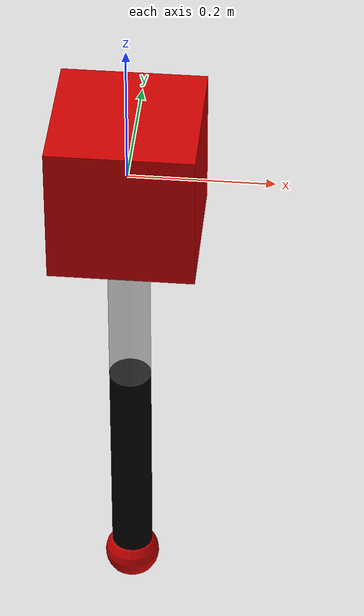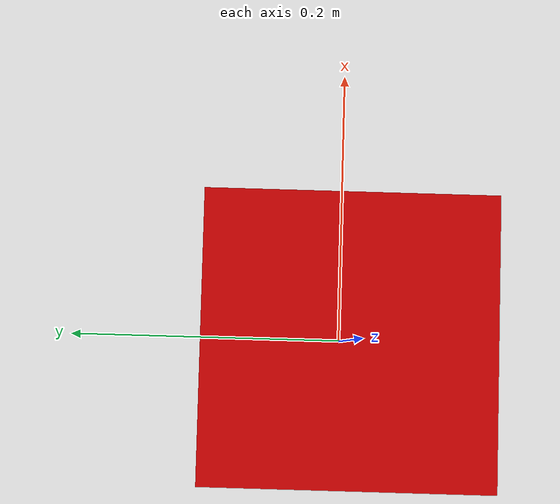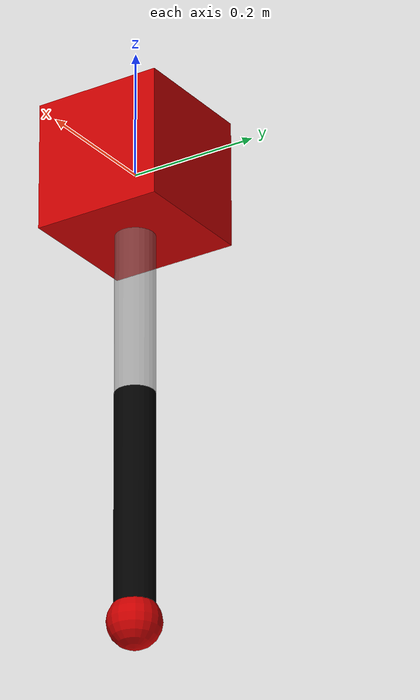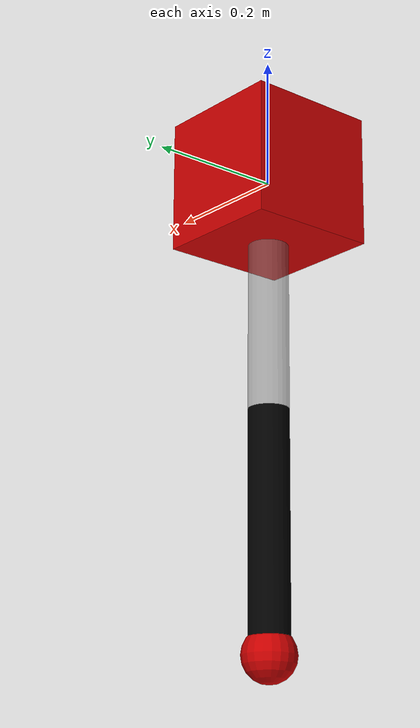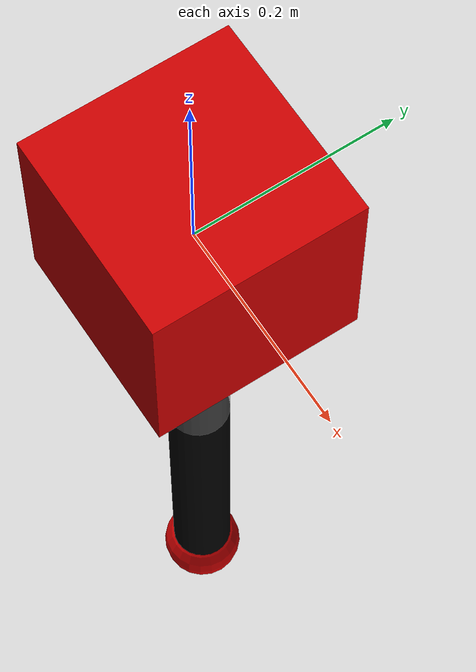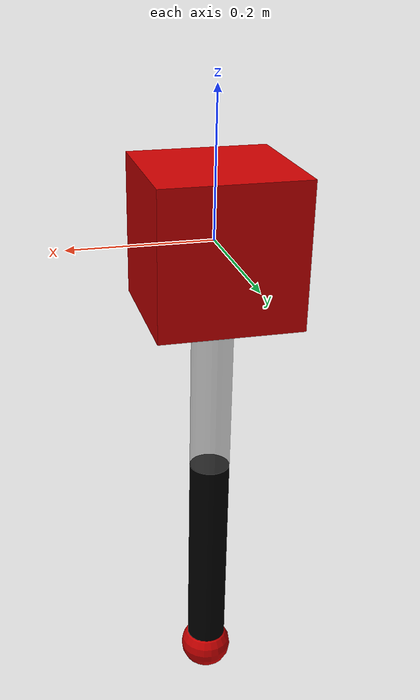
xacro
<?xml version="1.0"?>
<robot name="slatol" xmlns:xacro="http://www.ros.org/wiki/xacro">

  <xacro:property name="base_size" value="0.2" />
  <xacro:property name="L1" value="0.35" />
  <xacro:property name="L2" value="0.35" />
  <xacro:property name="link_radius" value="0.03" />

  <material name="Red"><color rgba="0.8 0 0 1"/></material>
  <material name="Blue"><color rgba="0 0 0.8 1"/></material>
  <material name="Black"><color rgba="0 0 0 1"/></material>
  <material name="Grey"><color rgba="0.5 0.5 0.5 0.5"/></material>

  <link name="world"/>

  <joint name="world_slide_x" type="prismatic">
    <parent link="world"/>
    <child link="virtual_rail_x"/>
    <origin xyz="0 0 0" rpy="0 0 0"/>
    <axis xyz="1 0 0"/>
    <limit lower="-100" upper="100" effort="20000" velocity="100"/>
    <dynamics damping="0.0" friction="0.0"/>
  </joint>

  <link name="virtual_rail_x">
    <inertial>
        <mass value="0.01"/>
        <inertia ixx="0.0001" iyy="0.0001" izz="0.0001" ixy="0" ixz="0" iyz="0"/>
    </inertial>
  </link>

  <joint name="world_slide_z" type="prismatic">
    <parent link="virtual_rail_x"/>
    <child link="virtual_rail_z"/>
    <origin xyz="0 0 0" rpy="0 0 0"/>
    <axis xyz="0 0 1"/>
    <limit lower="-10" upper="50" effort="20000" velocity="100"/>
    <dynamics damping="0.0" friction="0.0"/>
  </joint>

  <link name="virtual_rail_z">
    <inertial>
        <mass value="0.01"/>
        <inertia ixx="0.0001" iyy="0.0001" izz="0.0001" ixy="0" ixz="0" iyz="0"/>
    </inertial>
  </link>

  <joint name="boom_pitch" type="revolute">
    <parent link="virtual_rail_z"/>
    <child link="base_link"/>
    <origin xyz="0 0 0" rpy="0 0 0"/>
    <axis xyz="0 1 0"/>
    <limit lower="-6.28" upper="6.28" effort="1000" velocity="50"/>
    <dynamics damping="0.0" friction="0.0"/>
  </joint>

  <link name="base_link">
    <visual><geometry><box size="${base_size} ${base_size} ${base_size}" /></geometry><material name="Red"/></visual>
    <collision><geometry><box size="${base_size} ${base_size} ${base_size}" /></geometry></collision>
    <inertial><mass value="5.0"/><inertia ixx="0.1" iyy="0.1" izz="0.1" ixy="0" ixz="0" iyz="0"/></inertial>

    <sensor name="imu_sensor" type="imu">
      <always_on>1</always_on>
      <update_rate>100</update_rate>
      <visualize>true</visualize>
      <topic>imu</topic>
    </sensor>

    <sensor name="lidar_sensor" type="gpu_lidar">
        <pose>0 0 0 0 1.57 0</pose> <visualize>true</visualize>
        <update_rate>50</update_rate>
        <topic>slatol/lidar</topic>
        <ray>
            <scan><horizontal><samples>1</samples><resolution>1</resolution><min_angle>0</min_angle><max_angle>0</max_angle></horizontal></scan>
            <range><min>0.05</min><max>10.0</max><resolution>0.01</resolution></range>
        </ray>
    </sensor>
  </link>

  <joint name="hip_haa_joint" type="revolute">
    <parent link="base_link"/>
    <child link="abduction_link"/>
    <origin xyz="0 0 0" rpy="0 0 0"/>
    <axis xyz="1 0 0"/>
    <limit lower="-0.5" upper="0.5" effort="1000" velocity="20"/>
  </joint>

  <link name="abduction_link">
    <visual><geometry><cylinder length="0.05" radius="${link_radius}"/></geometry><material name="Blue"/></visual>
    <inertial><mass value="0.2"/><inertia ixx="0.001" iyy="0.001" izz="0.001" ixy="0" ixz="0" iyz="0"/></inertial>
  </link>

  <joint name="hip_hfe_joint" type="revolute">
    <parent link="abduction_link"/>
    <child link="thigh_link"/>
    <origin xyz="0 0 0" rpy="0 0 0"/>
    <axis xyz="0 1 0"/>
    <limit lower="-1.57" upper="1.57" effort="200.0" velocity="20.0"/>
  </joint>

  <link name="thigh_link">
    <visual><geometry><cylinder length="${L1}" radius="${link_radius}"/></geometry><origin xyz="0 0 ${-L1/2}" rpy="0 0 0"/><material name="Grey"/></visual>
    <collision><geometry><cylinder length="${L1}" radius="${link_radius}"/></geometry><origin xyz="0 0 ${-L1/2}" rpy="0 0 0"/></collision>
    <inertial><mass value="1.0"/><inertia ixx="0.01" iyy="0.01" izz="0.01" ixy="0" ixz="0" iyz="0"/></inertial>
  </link>

  <joint name="knee_kfe_joint" type="revolute">
    <parent link="thigh_link"/>
    <child link="calf_link"/>
    <origin xyz="0 0 ${-L1}" rpy="0 0 0"/>
    <axis xyz="0 1 0"/>
    <limit lower="-2.6" upper="0.0" effort="200.0" velocity="20.0"/>
  </joint>

  <link name="calf_link">
    <visual><geometry><cylinder length="${L2}" radius="${link_radius}"/></geometry><origin xyz="0 0 ${-L2/2}" rpy="0 0 0"/><material name="Black"/></visual>
    <collision><geometry><cylinder length="${L2}" radius="${link_radius}"/></geometry><origin xyz="0 0 ${-L2/2}" rpy="0 0 0"/></collision>
    <inertial><mass value="1.0"/><inertia ixx="0.01" iyy="0.01" izz="0.01" ixy="0" ixz="0" iyz="0"/></inertial>
  </link>

  <joint name="foot_fixed_joint" type="fixed">
    <parent link="calf_link"/>
    <child link="foot_link"/>
    <origin xyz="0 0 ${-L2}" rpy="0 0 0"/>
  </joint>

  <link name="foot_link">
     <visual><geometry><sphere radius="0.04"/></geometry><material name="Red"/></visual>
     <collision>
        <geometry><sphere radius="0.04"/></geometry>
        <surface><friction><ode><mu>1.0</mu><mu2>1.0</mu2></ode></friction></surface>
     </collision>
     <inertial><mass value="0.1"/><inertia ixx="0.001" iyy="0.001" izz="0.001" ixy="0" ixz="0" iyz="0"/></inertial>

     <sensor name="foot_contact" type="contact">
        <update_rate>1000</update_rate>
        <always_on>1</always_on>
        <contact>
            <collision>foot_link_fixed_joint_lump__foot_link_collision_1</collision>
        </contact>
        <topic>slatol/contact</topic>
     </sensor>
  </link>

  <ros2_control name="IgnitionSystem" type="system">
    <hardware><plugin>ign_ros2_control/IgnitionSystem</plugin></hardware>
    <joint name="hip_haa_joint"><command_interface name="position"/><state_interface name="position"/><state_interface name="velocity"/></joint>
    <joint name="hip_hfe_joint"><command_interface name="position"/><state_interface name="position"/><state_interface name="velocity"/></joint>
    <joint name="knee_kfe_joint"><command_interface name="position"/><state_interface name="position"/><state_interface name="velocity"/></joint>
  </ros2_control>

  <gazebo>
    <plugin filename="ign_ros2_control-system" name="ign_ros2_control::IgnitionROS2ControlPlugin">
      <parameters>$(find slatol3d_description)/config/slatol_controllers.yaml</parameters>
    </plugin>
    <plugin filename="libignition-gazebo-imu-system.so" name="ignition::gazebo::systems::Imu"></plugin>
    <plugin filename="libignition-gazebo-contact-system.so" name="ignition::gazebo::systems::Contact"></plugin>
    <plugin filename="libignition-gazebo-sensors-system.so" name="ignition::gazebo::systems::Sensors">
        <render_engine>ogre2</render_engine>
    </plugin>
  </gazebo>
</robot>
